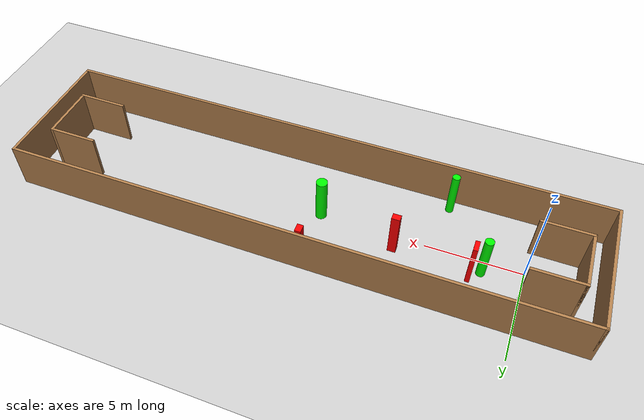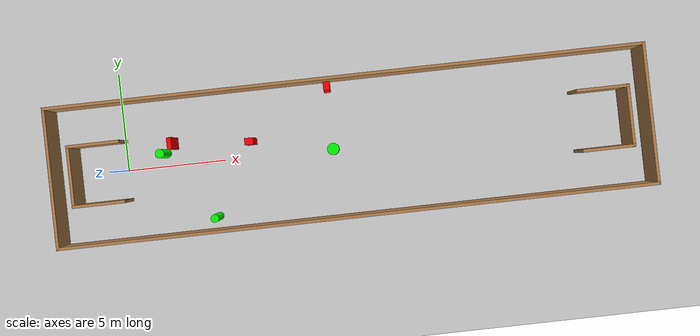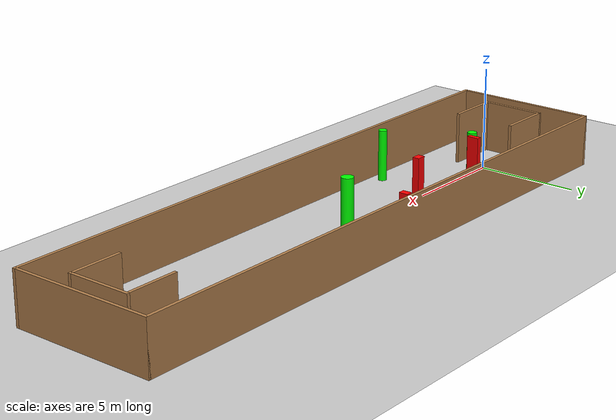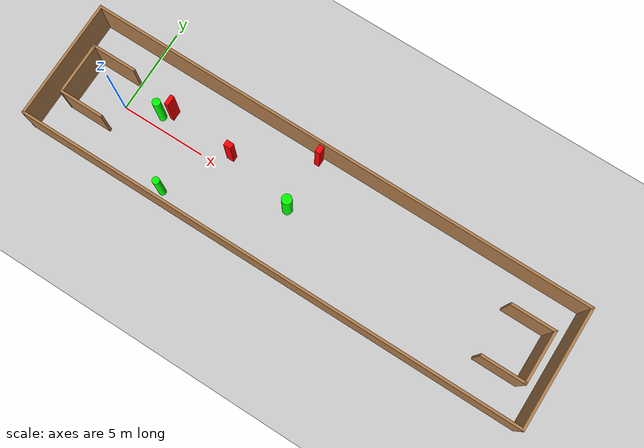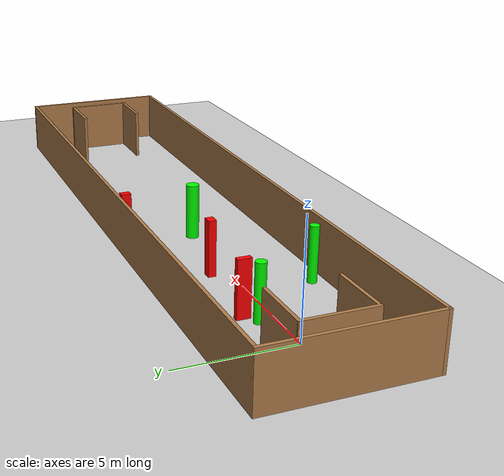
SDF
<sdf version="1.7">
 <world name="default">
  <light name="sun" type="directional">
   <pose>0 0 10 0 -0 0</pose>
   <diffuse>0.8 0.8 0.8 1</diffuse>
   <specular>0.2 0.2 0.2 1</specular>
   <attenuation>
    <range>1000</range>
    <constant>0.9</constant>
    <linear>0.01</linear>
    <quadratic>0.001</quadratic>
   </attenuation>
   <direction>-0.5 0.1 -0.9</direction>
   <spot><inner_angle>0</inner_angle><outer_angle>0</outer_angle><falloff>0</falloff></spot>
  </light>
  <model name="ground_plane">
   <static>1</static>
   <link name="link">
    <collision name="collision">
     <geometry><plane><normal>0 0 1</normal><size>100 100</size></plane></geometry>
     <surface>
      <contact><collide_bitmask>65535</collide_bitmask></contact>
      <friction><ode><mu>100</mu><mu2>50</mu2></ode></friction>
     </surface>
    </collision>
    <visual name="visual">
     <cast_shadows>0</cast_shadows>
     <geometry><plane><normal>0 0 1</normal><size>100 100</size></plane></geometry>
     <material>
      <script><uri>file://media/materials/scripts/gazebo.material</uri><name>Gazebo/Grey</name></script>
     </material>
    </visual>
   </link>
  </model>
  <gravity>0 0 -9.8</gravity>
  <magnetic_field>6e-06 2.3e-05 -4.2e-05</magnetic_field>
  <atmosphere type="adiabatic"/>
  <physics type="ode">
   <max_step_size>0.001</max_step_size>
   <real_time_factor>1</real_time_factor>
   <real_time_update_rate>1000</real_time_update_rate>
  </physics>
  <scene><ambient>0.4 0.4 0.4 1</ambient><background>0.7 0.7 0.7 1</background><shadows>1</shadows></scene>
  <spherical_coordinates>
   <surface_model>EARTH_WGS84</surface_model>
   <latitude_deg>0</latitude_deg>
   <longitude_deg>0</longitude_deg>
   <elevation>0</elevation>
   <heading_deg>0</heading_deg>
  </spherical_coordinates>
  <model name="my_base_walls">
   <link name="Wall_0">
    <collision name="Wall_0_Collision">
     <geometry><box><size>7.15 0.15 2.5</size></box></geometry>
     <pose>0 0 1.25 0 -0 0</pose>
    </collision>
    <visual name="Wall_0_Visual">
     <pose>0 0 1.25 0 -0 0</pose>
     <geometry><box><size>7.15 0.15 2.5</size></box></geometry>
     <material>
      <script><uri>file://media/materials/scripts/gazebo.material</uri><name>Gazebo/Wood</name></script>
      <ambient>1 1 1 1</ambient>
     </material>
     <meta><layer>0</layer></meta>
    </visual>
    <pose>-15 0 0 0 -0 1.5708</pose>
   </link>
   <link name="Wall_10">
    <collision name="Wall_10_Collision">
     <geometry><box><size>2.65 0.15 2.5</size></box></geometry>
     <pose>0 0 1.25 0 -0 0</pose>
    </collision>
    <visual name="Wall_10_Visual">
     <pose>0 0 1.25 0 -0 0</pose>
     <geometry><box><size>2.65 0.15 2.5</size></box></geometry>
     <material>
      <script><uri>file://media/materials/scripts/gazebo.material</uri><name>Gazebo/Wood</name></script>
      <ambient>1 1 1 1</ambient>
     </material>
     <meta><layer>0</layer></meta>
    </visual>
    <pose>-12.75 -1.5 0 0 -0 0</pose>
   </link>
   <link name="Wall_12">
    <collision name="Wall_12_Collision">
     <geometry><box><size>2.65 0.15 2.5</size></box></geometry>
     <pose>0 0 1.25 0 -0 0</pose>
    </collision>
    <visual name="Wall_12_Visual">
     <pose>0 0 1.25 0 -0 0</pose>
     <geometry><box><size>2.65 0.15 2.5</size></box></geometry>
     <material>
      <script><uri>file://media/materials/scripts/gazebo.material</uri><name>Gazebo/Wood</name></script>
      <ambient>1 1 1 1</ambient>
     </material>
     <meta><layer>0</layer></meta>
    </visual>
    <pose>-12.75 1.5 0 0 -0 0</pose>
   </link>
   <link name="Wall_14">
    <collision name="Wall_14_Collision">
     <geometry><box><size>3.15 0.15 2.5</size></box></geometry>
     <pose>0 0 1.25 0 -0 0</pose>
    </collision>
    <visual name="Wall_14_Visual">
     <pose>0 0 1.25 0 -0 0</pose>
     <geometry><box><size>3.15 0.15 2.5</size></box></geometry>
     <material>
      <script><uri>file://media/materials/scripts/gazebo.material</uri><name>Gazebo/Wood</name></script>
      <ambient>1 1 1 1</ambient>
     </material>
     <meta><layer>0</layer></meta>
    </visual>
    <pose>14 0 0 0 -0 -1.5708</pose>
   </link>
   <link name="Wall_15">
    <collision name="Wall_15_Collision">
     <geometry><box><size>2.65 0.15 2.5</size></box></geometry>
     <pose>0 0 1.25 0 -0 0</pose>
    </collision>
    <visual name="Wall_15_Visual">
     <pose>0 0 1.25 0 -0 0</pose>
     <geometry><box><size>2.65 0.15 2.5</size></box></geometry>
     <material>
      <script><uri>file://media/materials/scripts/gazebo.material</uri><name>Gazebo/Wood</name></script>
      <ambient>1 1 1 1</ambient>
     </material>
     <meta><layer>0</layer></meta>
    </visual>
    <pose>12.75 -1.5 0 0 -0 3.14159</pose>
   </link>
   <link name="Wall_17">
    <collision name="Wall_17_Collision">
     <geometry><box><size>2.65 0.15 2.5</size></box></geometry>
     <pose>0 0 1.25 0 -0 0</pose>
    </collision>
    <visual name="Wall_17_Visual">
     <pose>0 0 1.25 0 -0 0</pose>
     <geometry><box><size>2.65 0.15 2.5</size></box></geometry>
     <material>
      <script><uri>file://media/materials/scripts/gazebo.material</uri><name>Gazebo/Wood</name></script>
      <ambient>1 1 1 1</ambient>
     </material>
     <meta><layer>0</layer></meta>
    </visual>
    <pose>12.75 1.5 0 0 -0 3.14159</pose>
   </link>
   <link name="Wall_2">
    <collision name="Wall_2_Collision">
     <geometry><box><size>30.15 0.15 2.5</size></box></geometry>
     <pose>0 0 1.25 0 -0 0</pose>
    </collision>
    <visual name="Wall_2_Visual">
     <pose>0 0 1.25 0 -0 0</pose>
     <geometry><box><size>30.15 0.15 2.5</size></box></geometry>
     <material>
      <script><uri>file://media/materials/scripts/gazebo.material</uri><name>Gazebo/Wood</name></script>
      <ambient>1 1 1 1</ambient>
     </material>
     <meta><layer>0</layer></meta>
    </visual>
    <pose>-0 -3.5 0 0 -0 0</pose>
   </link>
   <link name="Wall_4">
    <collision name="Wall_4_Collision">
     <geometry><box><size>30.15 0.15 2.5</size></box></geometry>
     <pose>0 0 1.25 0 -0 0</pose>
    </collision>
    <visual name="Wall_4_Visual">
     <pose>0 0 1.25 0 -0 0</pose>
     <geometry><box><size>30.15 0.15 2.5</size></box></geometry>
     <material>
      <script><uri>file://media/materials/scripts/gazebo.material</uri><name>Gazebo/Wood</name></script>
      <ambient>1 1 1 1</ambient>
     </material>
     <meta><layer>0</layer></meta>
    </visual>
    <pose>-0 3.5 0 0 -0 0</pose>
   </link>
   <link name="Wall_6">
    <collision name="Wall_6_Collision">
     <geometry><box><size>7.15 0.15 2.5</size></box></geometry>
     <pose>0 0 1.25 0 -0 0</pose>
    </collision>
    <visual name="Wall_6_Visual">
     <pose>0 0 1.25 0 -0 0</pose>
     <geometry><box><size>7.15 0.15 2.5</size></box></geometry>
     <material>
      <script><uri>file://media/materials/scripts/gazebo.material</uri><name>Gazebo/Wood</name></script>
      <ambient>1 1 1 1</ambient>
     </material>
     <meta><layer>0</layer></meta>
    </visual>
    <pose>15 0 0 0 -0 -1.5708</pose>
   </link>
   <link name="Wall_9">
    <collision name="Wall_9_Collision">
     <geometry><box><size>3.15 0.15 2.5</size></box></geometry>
     <pose>0 0 1.25 0 -0 0</pose>
    </collision>
    <visual name="Wall_9_Visual">
     <pose>0 0 1.25 0 -0 0</pose>
     <geometry><box><size>3.15 0.15 2.5</size></box></geometry>
     <material>
      <script><uri>file://media/materials/scripts/gazebo.material</uri><name>Gazebo/Wood</name></script>
      <ambient>1 1 1 1</ambient>
     </material>
     <meta><layer>0</layer></meta>
    </visual>
    <pose>-14 0 0 0 -0 -1.5708</pose>
   </link>
   <static>1</static>
   <pose>11.5 0 0 0 -0 0</pose>
  </model>
  <model name="cylinder1">
   <static>1</static>
   <link name="link">
    <inertial>
     <mass>1</mass>
     <inertia><ixx>0.5</ixx><ixy>0</ixy><ixz>0</ixz><iyy>0.5</iyy><iyz>0</iyz><izz>1</izz></inertia>
    </inertial>
    <collision name="collision">
     <geometry><cylinder><radius>0.29390192196227427</radius><length>2.5</length></cylinder></geometry>
    </collision>
    <visual name="visual">
     <geometry><cylinder><radius>0.29390192196227427</radius><length>2.5</length></cylinder></geometry>
     <material>
      <ambient>0 1 0 1</ambient>
      <diffuse>0 1 0 1</diffuse>
      <specular>0.1 0.1 0.1 1</specular>
      <emissive>0 0 0 0</emissive>
     </material>
    </visual>
   </link>
   <pose>10.616417695132402 -0.0421817087862264 1.25 0 0 0</pose>
  </model>
  <model name="cylinder2">
   <static>1</static>
   <link name="link">
    <inertial>
     <mass>1</mass>
     <inertia><ixx>0.5</ixx><ixy>0</ixy><ixz>0</ixz><iyy>0.5</iyy><iyz>0</iyz><izz>1</izz></inertia>
    </inertial>
    <collision name="collision">
     <geometry><cylinder><radius>0.2051869194636522</radius><length>2.5</length></cylinder></geometry>
    </collision>
    <visual name="visual">
     <geometry><cylinder><radius>0.2051869194636522</radius><length>2.5</length></cylinder></geometry>
     <material>
      <ambient>0 1 0 1</ambient>
      <diffuse>0 1 0 1</diffuse>
      <specular>0.1 0.1 0.1 1</specular>
      <emissive>0 0 0 0</emissive>
     </material>
    </visual>
   </link>
   <pose>4.409322581780932 -2.8289455688783307 1.25 0 0 0</pose>
  </model>
  <model name="cylinder3">
   <static>1</static>
   <link name="link">
    <inertial>
     <mass>1</mass>
     <inertia><ixx>0.5</ixx><ixy>0</ixy><ixz>0</ixz><iyy>0.5</iyy><iyz>0</iyz><izz>1</izz></inertia>
    </inertial>
    <collision name="collision">
     <geometry><cylinder><radius>0.22919304674848096</radius><length>2.5</length></cylinder></geometry>
    </collision>
    <visual name="visual">
     <geometry><cylinder><radius>0.22919304674848096</radius><length>2.5</length></cylinder></geometry>
     <material>
      <ambient>0 1 0 1</ambient>
      <diffuse>0 1 0 1</diffuse>
      <specular>0.1 0.1 0.1 1</specular>
      <emissive>0 0 0 0</emissive>
     </material>
    </visual>
   </link>
   <pose>2.03547151303127 0.6677172890712377 1.25 0 0 0</pose>
  </model>
  <model name="box1">
   <static>1</static>
   <link name="link">
    <inertial>
     <mass>1</mass>
     <inertia><ixx>0.083</ixx><ixy>0</ixy><ixz>0</ixz><iyy>0.083</iyy><iyz>0</iyz><izz>0.083</izz></inertia>
    </inertial>
    <collision name="collision">
     <geometry><box><size>0.4319609203526873 0.33798717783648136 2.5</size></box></geometry>
    </collision>
    <visual name="visual">
     <geometry><box><size>0.4319609203526873 0.33798717783648136 2.5</size></box></geometry>
     <material>
      <ambient>1 0 0 1</ambient>
      <diffuse>1 0 0 1</diffuse>
      <specular>0.1 0.1 0.1 1</specular>
      <emissive>0 0 0 0</emissive>
     </material>
    </visual>
    <sensor name="my_contact" type="contact">
     <contact><collision>box_collision</collision><topic>__default_topic__</topic></contact>
    </sensor>
   </link>
   <pose>6.498197038242109 0.7937139188221698 1.25 0 0 0</pose>
  </model>
  <model name="box2">
   <static>1</static>
   <link name="link">
    <inertial>
     <mass>1</mass>
     <inertia><ixx>0.083</ixx><ixy>0</ixy><ixz>0</ixz><iyy>0.083</iyy><iyz>0</iyz><izz>0.083</izz></inertia>
    </inertial>
    <collision name="collision">
     <geometry><box><size>0.23286783832077285 0.5990593809459466 2.5</size></box></geometry>
    </collision>
    <visual name="visual">
     <geometry><box><size>0.23286783832077285 0.5990593809459466 2.5</size></box></geometry>
     <material>
      <ambient>1 0 0 1</ambient>
      <diffuse>1 0 0 1</diffuse>
      <specular>0.1 0.1 0.1 1</specular>
      <emissive>0 0 0 0</emissive>
     </material>
    </visual>
    <sensor name="my_contact" type="contact">
     <contact><collision>box_collision</collision><topic>__default_topic__</topic></contact>
    </sensor>
   </link>
   <pose>2.549494756059465 1.1228284546251635 1.25 0 0 0</pose>
  </model>
  <model name="box3">
   <static>1</static>
   <link name="link">
    <inertial>
     <mass>1</mass>
     <inertia><ixx>0.083</ixx><ixy>0</ixy><ixz>0</ixz><iyy>0.083</iyy><iyz>0</iyz><izz>0.083</izz></inertia>
    </inertial>
    <collision name="collision">
     <geometry><box><size>0.3160243908163028 0.4430462321842927 2.5</size></box></geometry>
    </collision>
    <visual name="visual">
     <geometry><box><size>0.3160243908163028 0.4430462321842927 2.5</size></box></geometry>
     <material>
      <ambient>1 0 0 1</ambient>
      <diffuse>1 0 0 1</diffuse>
      <specular>0.1 0.1 0.1 1</specular>
      <emissive>0 0 0 0</emissive>
     </material>
    </visual>
    <sensor name="my_contact" type="contact">
     <contact><collision>box_collision</collision><topic>__default_topic__</topic></contact>
    </sensor>
   </link>
   <pose>10.614988540311197 3.1084067275160425 1.25 0 0 0</pose>
  </model>
 </world>
</sdf>
